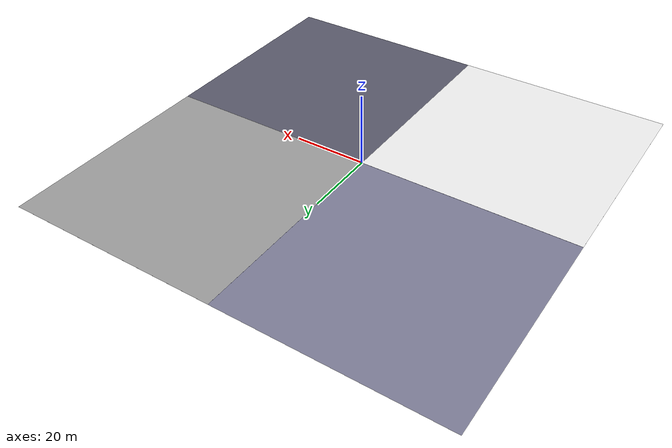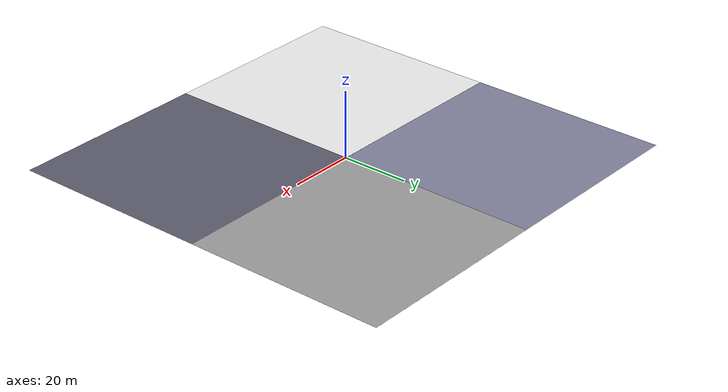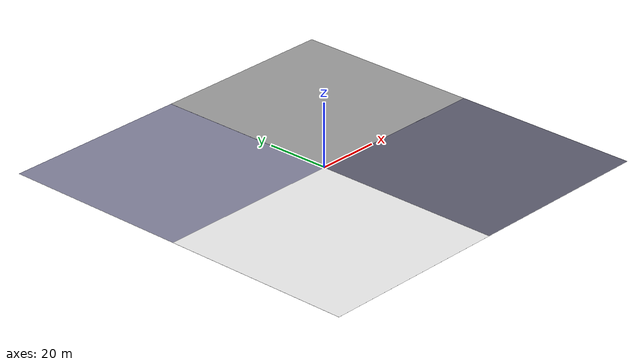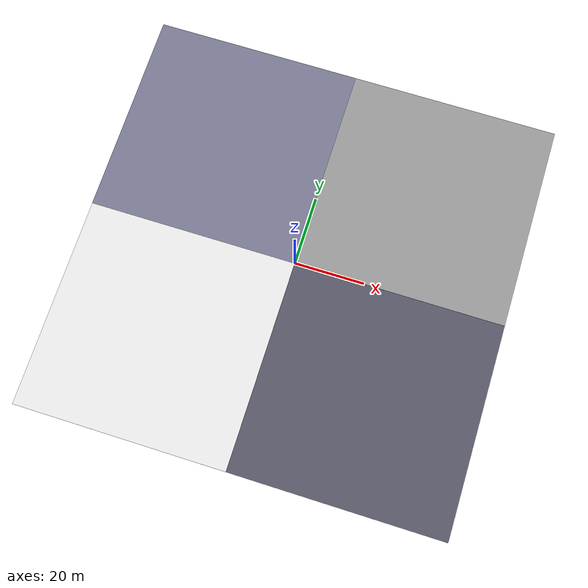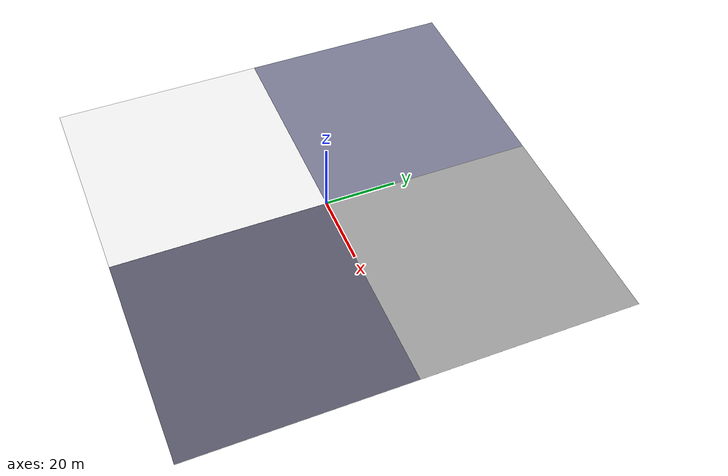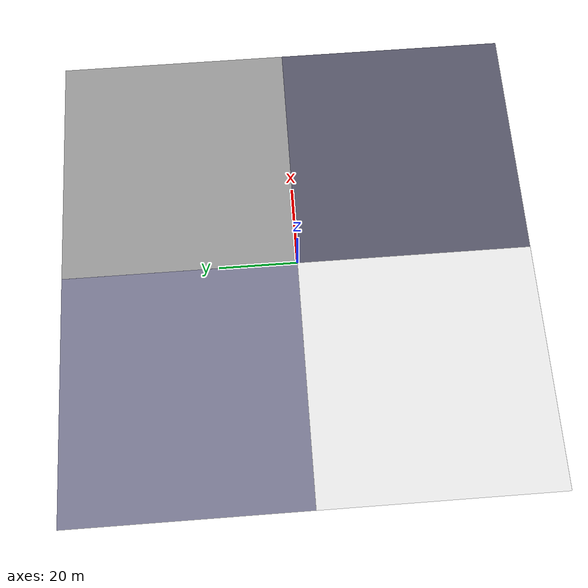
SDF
<sdf version="1.4">
 <world name="default">
  <light name="sun" type="directional">
   <pose>0 0 10 0 -0 0</pose>
   <diffuse>1.0 1.0 1.0 1</diffuse>
   <specular>0.2 0.2 0.2 1</specular>
   <attenuation>
    <range>1000</range>
    <constant>0.9</constant>
    <linear>0.01</linear>
    <quadratic>0.001</quadratic>
   </attenuation>
   <direction>-0.5 -0.5 -1.0</direction>
  </light>
  <include><uri>model://5</uri><pose>30 -30 0  0 0 0</pose></include>
  <include><uri>model://05</uri><pose>-30 30 0  0 0 0</pose></include>
  <include><uri>model://09</uri><pose>30 30 0  0 0 0</pose></include>
  <include><uri>model://009</uri><pose>-30 -30 0  0 0 0</pose></include>
  <physics type="ode">
   <max_step_size>0.001</max_step_size>
   <real_time_factor>1</real_time_factor>
   <real_time_update_rate>1000</real_time_update_rate>
   <gravity>0 0 -9.8</gravity>
  </physics>
  <scene>
   <ambient>1 1 1 1</ambient>
   <background>1 1 1 1</background>
   <shadows>1</shadows>
   <sky><clouds><speed>12</speed></clouds></sky>
  </scene>
  <spherical_coordinates>
   <surface_model>EARTH_WGS84</surface_model>
   <latitude_deg>0</latitude_deg>
   <longitude_deg>0</longitude_deg>
   <elevation>0</elevation>
   <heading_deg>0</heading_deg>
  </spherical_coordinates>
 </world>
</sdf>

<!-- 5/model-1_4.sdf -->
<sdf version="1.4">
  <model name="black_ice_lower_friction">
    <static>true</static>
    <link name="link">
      <collision name="collision">
        <geometry>
          <box>
            <size>60 60 0.01</size>
          </box>
        </geometry>
        <surface>
          <friction>
            <ode>
              <mu>0.5</mu>
              <mu2>0.5</mu2>
            </ode>
          </friction>
        </surface>
      </collision>
      <visual name="visual_1">
        <pose>0 0 0 0 0 0</pose>
        <cast_shadows>false</cast_shadows>
        <geometry>
          <box>
            <size>60 60 0.01</size>
          </box>
        </geometry>
        <material>
  		<ambient>0.1 0.1 0.1 1</ambient>
  		<diffuse>0.1 0.1 0.2 0.7</diffuse>
  		<specular>0 0 0 0</specular>
  		<emissive>0 0 0 1</emissive>
        </material>
      </visual>
    </link>
  </model>
</sdf>

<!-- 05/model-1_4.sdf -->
<sdf version="1.4">
  <model name="black_ice_lower_friction">
    <static>true</static>
    <link name="link">
      <collision name="collision">
        <geometry>
          <box>
            <size>60 60 0.01</size>
          </box>
        </geometry>
        <surface>
          <friction>
            <ode>
              <mu>0.05</mu>
              <mu2>0.05</mu2>
            </ode>
          </friction>
        </surface>
      </collision>
      <visual name="visual_1">
        <pose>0 0 0 0 0 0</pose>
        <cast_shadows>false</cast_shadows>
        <geometry>
          <box>
            <size>60 60 0.01</size>
          </box>
        </geometry>
        <material>
  		<ambient>0.1 0.1 0.1 1</ambient>
  		<diffuse>0 0 0.2 0.5</diffuse>
  		<specular>0 0 0 0</specular>
  		<emissive>0 0 0 1</emissive>
        </material>
      </visual>
    </link>
  </model>
</sdf>

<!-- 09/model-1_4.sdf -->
<sdf version="1.4">
  <model name="black_ice_lower_friction">
    <static>true</static>
    <link name="link">
      <collision name="collision">
        <geometry>
          <box>
            <size>60 60 0.01</size>
          </box>
        </geometry>
        <surface>
          <friction>
            <ode>
              <mu>0.09</mu>
              <mu2>0.09</mu2>
            </ode>
          </friction>
        </surface>
      </collision>
      <visual name="visual_1">
        <pose>0 0 0 0 0 0</pose>
        <cast_shadows>false</cast_shadows>
        <geometry>
          <box>
            <size>60 60 0.01</size>
          </box>
        </geometry>
        <material>
          <script>
            <uri>model://asphalt_plane/materials/scripts</uri>
            <uri>model://asphalt_plane/materials/textures</uri>
            <name>Gazebo/Grey</name>
          </script>
        </material>
      </visual>
    </link>
  </model>
</sdf>

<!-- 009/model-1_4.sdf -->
<sdf version="1.4">
  <model name="black_ice_lower_friction">
    <static>true</static>
    <link name="link">
      <collision name="collision">
        <geometry>
          <box>
            <size>60 60 0.01</size>
          </box>
        </geometry>
        <surface>
          <friction>
            <ode>
              <mu>0.009</mu>
              <mu2>0.009</mu2>
            </ode>
          </friction>
        </surface>
      </collision>
      <visual name="visual_1">
        <pose>0 0 0 0 0 0</pose>
        <cast_shadows>false</cast_shadows>
        <geometry>
          <box>
            <size>60 60 0.01</size>
          </box>
        </geometry>
        <material>
          <script>
            <uri>model://asphalt_plane/materials/scripts</uri>
            <uri>model://asphalt_plane/materials/textures</uri>
            <name>Gazebo/White</name>
          </script>
        </material>
      </visual>
    </link>
  </model>
</sdf>
